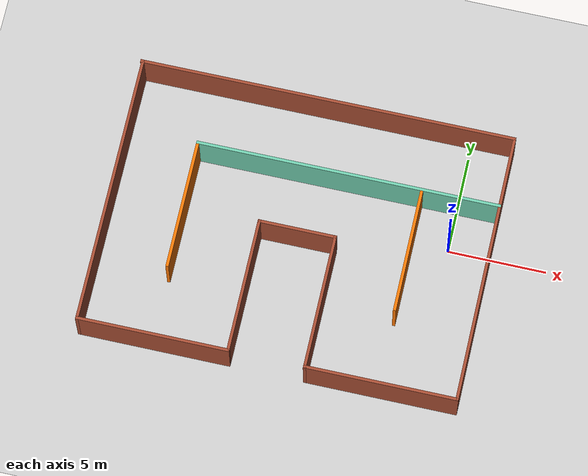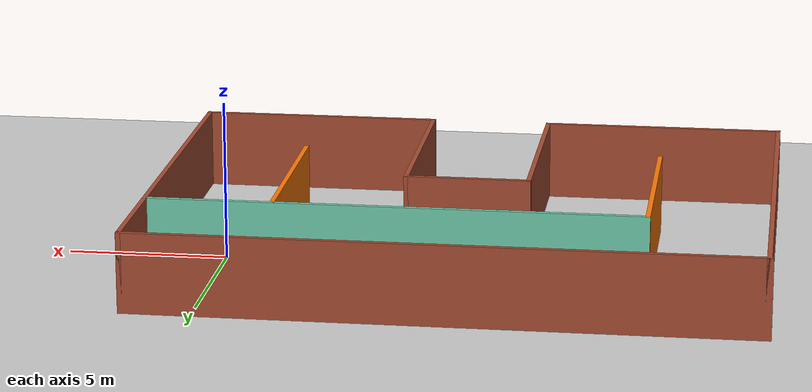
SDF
<sdf version="1.6">
 <world name="default">
  <light name="sun" type="directional">
   <pose>0 0 10 0 -0 0</pose>
   <diffuse>0.8 0.8 0.8 1</diffuse>
   <specular>0.2 0.2 0.2 1</specular>
   <attenuation>
    <range>1000</range>
    <constant>0.9</constant>
    <linear>0.01</linear>
    <quadratic>0.001</quadratic>
   </attenuation>
   <direction>-0.5 0.1 -0.9</direction>
  </light>
  <model name="ground_plane">
   <static>1</static>
   <link name="link">
    <collision name="collision">
     <geometry><plane><normal>0 0 1</normal><size>100 100</size></plane></geometry>
     <surface><friction><ode><mu>100</mu><mu2>50</mu2></ode></friction></surface>
    </collision>
    <visual name="visual">
     <cast_shadows>0</cast_shadows>
     <geometry><plane><normal>0 0 1</normal><size>100 100</size></plane></geometry>
     <material>
      <script><uri>file://media/materials/scripts/gazebo.material</uri><name>Gazebo/Grey</name></script>
     </material>
    </visual>
   </link>
  </model>
  <gravity>0 0 -9.8</gravity>
  <magnetic_field>6e-06 2.3e-05 -4.2e-05</magnetic_field>
  <atmosphere type="adiabatic"/>
  <physics name="default_physics" default="0" type="ode">
   <max_step_size>0.001</max_step_size>
   <real_time_factor>1</real_time_factor>
   <real_time_update_rate>1000</real_time_update_rate>
  </physics>
  <scene><ambient>0.4 0.4 0.4 1</ambient><background>0.7 0.7 0.7 1</background><shadows>1</shadows></scene>
  <spherical_coordinates>
   <surface_model>EARTH_WGS84</surface_model>
   <latitude_deg>0</latitude_deg>
   <longitude_deg>0</longitude_deg>
   <elevation>0</elevation>
   <heading_deg>0</heading_deg>
  </spherical_coordinates>
  <model name="building">
   <pose>-7.44253 -1.21632 0 0 -0 0</pose>
   <link name="Wall_10">
    <collision name="Wall_10_Collision">
     <geometry><box><size>7.75 0.15 2.5</size></box></geometry>
     <pose>0 0 1.25 0 -0 0</pose>
    </collision>
    <visual name="Wall_10_Visual">
     <pose>0 0 1.25 0 -0 0</pose>
     <geometry><box><size>7.75 0.15 2.5</size></box></geometry>
     <material>
      <script><uri>file://media/materials/scripts/gazebo.material</uri><name>Gazebo/Bricks</name></script>
      <ambient>1 1 1 1</ambient>
     </material>
     <meta><layer>0</layer></meta>
    </visual>
    <pose>-5.7 -6.925 0 0 -0 3.14159</pose>
   </link>
   <link name="Wall_11">
    <collision name="Wall_11_Collision">
     <geometry><box><size>14 0.15 2.5</size></box></geometry>
     <pose>0 0 1.25 0 -0 0</pose>
    </collision>
    <visual name="Wall_11_Visual">
     <pose>0 0 1.25 0 -0 0</pose>
     <geometry><box><size>14 0.15 2.5</size></box></geometry>
     <material>
      <script><uri>file://media/materials/scripts/gazebo.material</uri><name>Gazebo/Bricks</name></script>
      <ambient>1 1 1 1</ambient>
     </material>
     <meta><layer>0</layer></meta>
    </visual>
    <pose>-9.5 0 0 0 -0 1.5708</pose>
   </link>
   <link name="Wall_14">
    <collision name="Wall_14_Collision">
     <geometry><box><size>15.5 0.15 2.5</size></box></geometry>
     <pose>0 0 1.25 0 -0 0</pose>
    </collision>
    <visual name="Wall_14_Visual">
     <pose>0 0 1.25 0 -0 0</pose>
     <geometry><box><size>15.5 0.15 2.5</size></box></geometry>
     <material>
      <script><uri>file://media/materials/scripts/gazebo.material</uri><name>Gazebo/Grey</name></script>
      <ambient>0.435294 0.796078 0.67451 1</ambient>
     </material>
     <meta><layer>0</layer></meta>
    </visual>
    <pose>1.86538 3.29678 0 0 -0 3.14159</pose>
   </link>
   <link name="Wall_15">
    <collision name="Wall_15_Collision">
     <geometry><box><size>6.75 0.15 2.5</size></box></geometry>
     <pose>0 0 1.25 0 -0 0</pose>
    </collision>
    <visual name="Wall_15_Visual">
     <pose>0 0 1.25 0 -0 0</pose>
     <geometry><box><size>6.75 0.15 2.5</size></box></geometry>
     <material>
      <script><uri>file://media/materials/scripts/gazebo.material</uri><name>Gazebo/Grey</name></script>
      <ambient>0.996078 0.47451 0.0196078 1</ambient>
     </material>
     <meta><layer>0</layer></meta>
    </visual>
    <pose>-5.80962 -0.003219 0 0 0 -1.5708</pose>
   </link>
   <link name="Wall_19">
    <collision name="Wall_19_Collision">
     <geometry><box><size>6.5 0.15 2.5</size></box></geometry>
     <pose>0 0 1.25 0 -0 0</pose>
    </collision>
    <visual name="Wall_19_Visual">
     <pose>0 0 1.25 0 -0 0</pose>
     <geometry><box><size>6.5 0.15 2.5</size></box></geometry>
     <material>
      <script><uri>file://media/materials/scripts/gazebo.material</uri><name>Gazebo/Grey</name></script>
      <ambient>0.996078 0.47451 0.0196078 1</ambient>
     </material>
     <meta><layer>0</layer></meta>
    </visual>
    <pose>5.61151 0.094464 0 0 0 -1.5708</pose>
   </link>
   <link name="Wall_3">
    <collision name="Wall_3_Collision">
     <geometry><box><size>19.25 0.15 2.5</size></box></geometry>
     <pose>0 0 1.25 0 -0 0</pose>
    </collision>
    <visual name="Wall_3_Visual">
     <pose>0 0 1.25 0 -0 0</pose>
     <geometry><box><size>19.25 0.15 2.5</size></box></geometry>
     <material>
      <script><uri>file://media/materials/scripts/gazebo.material</uri><name>Gazebo/Bricks</name></script>
      <ambient>1 1 1 1</ambient>
     </material>
     <meta><layer>0</layer></meta>
    </visual>
    <pose>0 6.925 0 0 -0 0</pose>
   </link>
   <link name="Wall_5">
    <collision name="Wall_5_Collision">
     <geometry><box><size>14 0.15 2.5</size></box></geometry>
     <pose>0 0 1.25 0 -0 0</pose>
    </collision>
    <visual name="Wall_5_Visual">
     <pose>0 0 1.25 0 -0 0</pose>
     <geometry><box><size>14 0.15 2.5</size></box></geometry>
     <material>
      <script><uri>file://media/materials/scripts/gazebo.material</uri><name>Gazebo/Bricks</name></script>
      <ambient>1 1 1 1</ambient>
     </material>
     <meta><layer>0</layer></meta>
    </visual>
    <pose>9.55 0 0 0 0 -1.5708</pose>
   </link>
   <link name="Wall_6">
    <collision name="Wall_6_Collision">
     <geometry><box><size>7.75 0.15 2.5</size></box></geometry>
     <pose>0 0 1.25 0 -0 0</pose>
    </collision>
    <visual name="Wall_6_Visual">
     <pose>0 0 1.25 0 -0 0</pose>
     <geometry><box><size>7.75 0.15 2.5</size></box></geometry>
     <material>
      <script><uri>file://media/materials/scripts/gazebo.material</uri><name>Gazebo/Bricks</name></script>
      <ambient>1 1 1 1</ambient>
     </material>
     <meta><layer>0</layer></meta>
    </visual>
    <pose>5.75 -6.925 0 0 -0 3.14159</pose>
   </link>
   <link name="Wall_7">
    <collision name="Wall_7_Collision">
     <geometry><box><size>7 0.15 2.5</size></box></geometry>
     <pose>0 0 1.25 0 -0 0</pose>
    </collision>
    <visual name="Wall_7_Visual">
     <pose>0 0 1.25 0 -0 0</pose>
     <geometry><box><size>7 0.15 2.5</size></box></geometry>
     <material>
      <script><uri>file://media/materials/scripts/gazebo.material</uri><name>Gazebo/Bricks</name></script>
      <ambient>1 1 1 1</ambient>
     </material>
     <meta><layer>0</layer></meta>
    </visual>
    <pose>1.95 -3.5 0 0 -0 1.5708</pose>
   </link>
   <link name="Wall_8">
    <collision name="Wall_8_Collision">
     <geometry><box><size>4 0.15 2.5</size></box></geometry>
     <pose>0 0 1.25 0 -0 0</pose>
    </collision>
    <visual name="Wall_8_Visual">
     <pose>0 0 1.25 0 -0 0</pose>
     <geometry><box><size>4 0.15 2.5</size></box></geometry>
     <material>
      <script><uri>file://media/materials/scripts/gazebo.material</uri><name>Gazebo/Bricks</name></script>
      <ambient>1 1 1 1</ambient>
     </material>
     <meta><layer>0</layer></meta>
    </visual>
    <pose>0.025 -0.075 0 0 -0 3.14159</pose>
   </link>
   <link name="Wall_9">
    <collision name="Wall_9_Collision">
     <geometry><box><size>7 0.15 2.5</size></box></geometry>
     <pose>0 0 1.25 0 -0 0</pose>
    </collision>
    <visual name="Wall_9_Visual">
     <pose>0 0 1.25 0 -0 0</pose>
     <geometry><box><size>7 0.15 2.5</size></box></geometry>
     <material>
      <script><uri>file://media/materials/scripts/gazebo.material</uri><name>Gazebo/Bricks</name></script>
      <ambient>1 1 1 1</ambient>
     </material>
     <meta><layer>0</layer></meta>
    </visual>
    <pose>-1.9 -3.5 0 0 0 -1.5708</pose>
   </link>
   <static>1</static>
  </model>
 </world>
</sdf>
